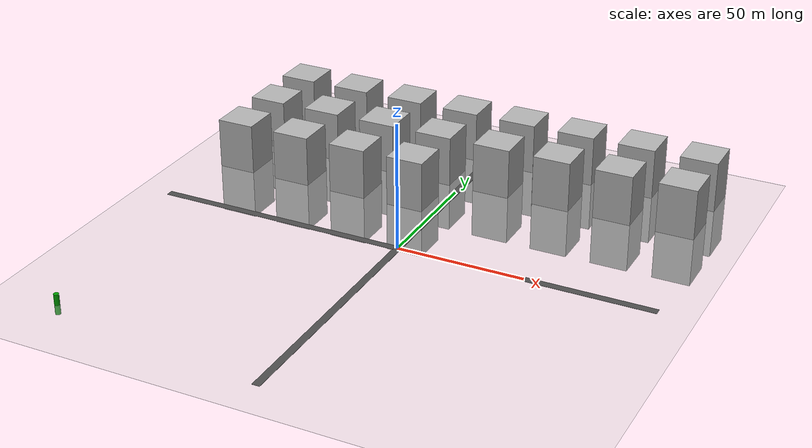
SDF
<?xml version="1.0" ?>
<sdf version="1.6">
  <world name="building_world">
    <!-- Expanded Ground plane -->
    <model name="ground_plane">
      <static>true</static>
      <link name="link">
        <collision name="collision">
          <geometry>
            <plane>
              <normal>0 0 1</normal>
              <size>200 200</size>
            </plane>
          </geometry>
        </collision>
        <visual name="visual">
          <geometry>
            <plane>
              <normal>0 0 1</normal>
              <size>200 200</size>
            </plane>
          </geometry>
          <material>
            <ambient>0.8 0.8 0.8 1</ambient>
          </material>
        </visual>
      </link>
    </model>

    <!-- Sun -->
    <include>
      <uri>model://sun</uri>
    </include>

    <!-- Environmental parameters -->
    <scene>
      <ambient>0.8 0.8 0.8 1</ambient>
      <background>0.7 0.7 0.7 1</background>
      <shadows>true</shadows>
      <wind>
        <direction>1 0 0</direction>
        <speed>2.5</speed>
      </wind>
      <humidity>0.5</humidity>
    </scene>

    <!-- 20 non-overlapping buildings on a grid -->
    <model name="building1">
      <pose>-87.5 87.5 0 0 0 0</pose>
      <static>true</static>
      <link name="link">
        <collision name="collision">
          <geometry>
            <box>
              <size>15 15 40</size>
            </box>
          </geometry>
        </collision>
        <visual name="visual">
          <geometry>
            <box>
              <size>15 15 40</size>
            </box>
          </geometry>
          <material>
            <ambient>0.7 0.7 0.7 1</ambient>
          </material>
        </visual>
      </link>
    </model>

    <model name="building2">
      <pose>-62.5 87.5 0 0 0 0</pose>
      <static>true</static>
      <link name="link">
        <collision name="collision">
          <geometry>
            <box>
              <size>15 15 40</size>
            </box>
          </geometry>
        </collision>
        <visual name="visual">
          <geometry>
            <box>
              <size>15 15 40</size>
            </box>
          </geometry>
          <material>
            <ambient>0.7 0.7 0.7 1</ambient>
          </material>
        </visual>
      </link>
    </model>

    <model name="building3">
      <pose>-37.5, 87.5 0 0 0 0</pose>
      <static>true</static>
      <link name="link">
        <collision name="collision">
          <geometry>
            <box>
              <size>15 15 40</size>
            </box>
          </geometry>
        </collision>
        <visual name="visual">
          <geometry>
            <box>
              <size>15 15 40</size>
            </box>
          </geometry>
          <material>
            <ambient>0.7 0.7 0.7 1</ambient>
          </material>
        </visual>
      </link>
    </model>

    <model name="building4">
      <pose>-12.5, 87.5 0 0 0 0</pose>
      <static>true</static>
      <link name="link">
        <collision name="collision">
          <geometry>
            <box>
              <size>15 15 40</size>
            </box>
          </geometry>
        </collision>
        <visual name="visual">
          <geometry>
            <box>
              <size>15 15 40</size>
            </box>
          </geometry>
          <material>
            <ambient>0.7 0.7 0.7 1</ambient>
          </material>
        </visual>
      </link>
    </model>

    <model name="building5">
      <pose>12.5, 87.5 0 0 0 0</pose>
      <static>true</static>
      <link name="link">
        <collision name="collision">
          <geometry>
            <box>
              <size>15 15 40</size>
            </box>
          </geometry>
        </collision>
        <visual name="visual">
          <geometry>
            <box>
              <size>15 15 40</size>
            </box>
          </geometry>
          <material>
            <ambient>0.7 0.7 0.7 1</ambient>
          </material>
        </visual>
      </link>
    </model>

    <model name="building6">
      <pose>37.5, 87.5 0 0 0 0</pose>
      <static>true</static>
      <link name="link">
        <collision name="collision">
          <geometry>
            <box>
              <size>15 15 40</size>
            </box>
          </geometry>
        </collision>
        <visual name="visual">
          <geometry>
            <box>
              <size>15 15 40</size>
            </box>
          </geometry>
          <material>
            <ambient>0.7 0.7 0.7 1</ambient>
          </material>
        </visual>
      </link>
    </model>

    <model name="building7">
      <pose>62.5, 87.5 0 0 0 0</pose>
      <static>true</static>
      <link name="link">
        <collision name="collision">
          <geometry>
            <box>
              <size>15 15 40</size>
            </box>
          </geometry>
        </collision>
        <visual name="visual">
          <geometry>
            <box>
              <size>15 15 40</size>
            </box>
          </geometry>
          <material>
            <ambient>0.7 0.7 0.7 1</ambient>
          </material>
        </visual>
      </link>
    </model>

    <model name="building8">
      <pose>87.5, 87.5 0 0 0 0</pose>
      <static>true</static>
      <link name="link">
        <collision name="collision">
          <geometry>
            <box>
              <size>15 15 40</size>
            </box>
          </geometry>
        </collision>
        <visual name="visual">
          <geometry>
            <box>
              <size>15 15 40</size>
            </box>
          </geometry>
          <material>
            <ambient>0.7 0.7 0.7 1</ambient>
          </material>
        </visual>
      </link>
    </model>

    <model name="building9">
      <pose>-87.5, 62.5 0 0 0 0</pose>
      <static>true</static>
      <link name="link">
        <collision name="collision">
          <geometry>
            <box>
              <size>15 15 40</size>
            </box>
          </geometry>
        </collision>
        <visual name="visual">
          <geometry>
            <box>
              <size>15 15 40</size>
            </box>
          </geometry>
          <material>
            <ambient>0.7 0.7 0.7 1</ambient>
          </material>
        </visual>
      </link>
    </model>

    <model name="building10">
      <pose>-62.5, 62.5 0 0 0 0</pose>
      <static>true</static>
      <link name="link">
        <collision name="collision">
          <geometry>
            <box>
              <size>15 15 40</size>
            </box>
          </geometry>
        </collision>
        <visual name="visual">
          <geometry>
            <box>
              <size>15 15 40</size>
            </box>
          </geometry>
          <material>
            <ambient>0.7 0.7 0.7 1</ambient>
          </material>
        </visual>
      </link>
    </model>

    <model name="building11">
      <pose>-37.5, 62.5 0 0 0 0</pose>
      <static>true</static>
      <link name="link">
        <collision name="collision">
          <geometry>
            <box>
              <size>15 15 40</size>
            </box>
          </geometry>
        </collision>
        <visual name="visual">
          <geometry>
            <box>
              <size>15 15 40</size>
            </box>
          </geometry>
          <material>
            <ambient>0.7 0.7 0.7 1</ambient>
          </material>
        </visual>
      </link>
    </model>

    <model name="building12">
      <pose>-12.5, 62.5 0 0 0 0</pose>
      <static>true</static>
      <link name="link">
        <collision name="collision">
          <geometry>
            <box>
              <size>15 15 40</size>
            </box>
          </geometry>
        </collision>
        <visual name="visual">
          <geometry>
            <box>
              <size>15 15 40</size>
            </box>
          </geometry>
          <material>
            <ambient>0.7 0.7 0.7 1</ambient>
          </material>
        </visual>
      </link>
    </model>

    <model name="building13">
      <pose>12.5, 62.5 0 0 0 0</pose>
      <static>true</static>
      <link name="link">
        <collision name="collision">
          <geometry>
            <box>
              <size>15 15 40</size>
            </box>
          </geometry>
        </collision>
        <visual name="visual">
          <geometry>
            <box>
              <size>15 15 40</size>
            </box>
          </geometry>
          <material>
            <ambient>0.7 0.7 0.7 1</ambient>
          </material>
        </visual>
      </link>
    </model>

    <model name="building14">
      <pose>37.5, 62.5 0 0 0 0</pose>
      <static>true</static>
      <link name="link">
        <collision name="collision">
          <geometry>
            <box>
              <size>15 15 40</size>
            </box>
          </geometry>
        </collision>
        <visual name="visual">
          <geometry>
            <box>
              <size>15 15 40</size>
            </box>
          </geometry>
          <material>
            <ambient>0.7 0.7 0.7 1</ambient>
          </material>
        </visual>
      </link>
    </model>

    <model name="building15">
      <pose>62.5, 62.5 0 0 0 0</pose>
      <static>true</static>
      <link name="link">
        <collision name="collision">
          <geometry>
            <box>
              <size>15 15 40</size>
            </box>
          </geometry>
        </collision>
        <visual name="visual">
          <geometry>
            <box>
              <size>15 15 40</size>
            </box>
          </geometry>
          <material>
            <ambient>0.7 0.7 0.7 1</ambient>
          </material>
        </visual>
      </link>
    </model>

    <model name="building16">
      <pose>87.5, 62.5 0 0 0 0</pose>
      <static>true</static>
      <link name="link">
        <collision name="collision">
          <geometry>
            <box>
              <size>15 15 40</size>
            </box>
          </geometry>
        </collision>
        <visual name="visual">
          <geometry>
            <box>
              <size>15 15 40</size>
            </box>
          </geometry>
          <material>
            <ambient>0.7 0.7 0.7 1</ambient>
          </material>
        </visual>
      </link>
    </model>

    <model name="building17">
      <pose>-87.5, 37.5 0 0 0 0</pose>
      <static>true</static>
      <link name="link">
        <collision name="collision">
          <geometry>
            <box>
              <size>15 15 40</size>
            </box>
          </geometry>
        </collision>
        <visual name="visual">
          <geometry>
            <box>
              <size>15 15 40</size>
            </box>
          </geometry>
          <material>
            <ambient>0.7 0.7 0.7 1</ambient>
          </material>
        </visual>
      </link>
    </model>

    <model name="building18">
      <pose>-62.5, 37.5 0 0 0 0</pose>
      <static>true</static>
      <link name="link">
        <collision name="collision">
          <geometry>
            <box>
              <size>15 15 40</size>
            </box>
          </geometry>
        </collision>
        <visual name="visual">
          <geometry>
            <box>
              <size>15 15 40</size>
            </box>
          </geometry>
          <material>
            <ambient>0.7 0.7 0.7 1</ambient>
          </material>
        </visual>
      </link>
    </model>

    <model name="building19">
      <pose>-37.5, 37.5 0 0 0 0</pose>
      <static>true</static>
      <link name="link">
        <collision name="collision">
          <geometry>
            <box>
              <size>15 15 40</size>
            </box>
          </geometry>
        </collision>
        <visual name="visual">
          <geometry>
            <box>
              <size>15 15 40</size>
            </box>
          </geometry>
          <material>
            <ambient>0.7 0.7 0.7 1</ambient>
          </material>
        </visual>
      </link>
    </model>

    <model name="building17">
      <pose>-12.5, 37.5 0 0 0 0</pose>
      <static>true</static>
      <link name="link">
        <collision name="collision">
          <geometry>
            <box>
              <size>15 15 40</size>
            </box>
          </geometry>
        </collision>
        <visual name="visual">
          <geometry>
            <box>
              <size>15 15 40</size>
            </box>
          </geometry>
          <material>
            <ambient>0.7 0.7 0.7 1</ambient>
          </material>
        </visual>
      </link>
    </model>

    <!-- Continue building definitions with grid positions:
         (), (), (),
         (), (), (),
         (), (), (),
         (), (), (),
         (), (), (),
         (), (), () -->

    <!-- Expanded Roads -->
    <model name="road_horizontal">
      <pose>0 0 0 0 0 0</pose>
      <static>true</static>
      <link name="link">
        <collision name="collision">
          <geometry>
            <box>
              <size>200 3 0.1</size>
            </box>
          </geometry>
        </collision>
        <visual name="visual">
          <geometry>
            <box>
              <size>200 3 0.1</size>
            </box>
          </geometry>
          <material>
            <ambient>0.3 0.3 0.3 1</ambient>
          </material>
        </visual>
      </link>
    </model>

    <model name="road_vertical">
      <pose>0 0 0 0 0 1.5708</pose>
      <static>true</static>
      <link name="link">
        <collision name="collision">
          <geometry>
            <box>
              <size>200 3 0.1</size>
            </box>
          </geometry>
        </collision>
        <visual name="visual">
          <geometry>
            <box>
              <size>200 3 0.1</size>
            </box>
          </geometry>
          <material>
            <ambient>0.3 0.3 0.3 1</ambient>
          </material>
        </visual>
      </link>
    </model>

    <!-- Non-overlapping trees -->
    <model name="tree1">
      <pose>-87.5 -87.5 0 0 0 0</pose>
      <static>true</static>
      <link name="link">
        <collision name="collision">
          <geometry>
            <cylinder>
              <radius>1</radius>
              <length>8</length>
            </cylinder>
          </geometry>
        </collision>
        <visual name="visual">
           <geometry>
            <cylinder>
              <radius>1</radius>
              <length>8</length>
            </cylinder>
          </geometry>
          <material>
            <ambient>0 0.6 0 1</ambient>
          </material>
        </visual>
      </link>
    </model>

    <!-- Additional trees at:
         (-62.5, -87.5), (-37.5, -87.5), (-12.5, -87.5),
         (12.5, -87.5), (37.5, -87.5), (62.5, -87.5),
         (87.5, -87.5), (-87.5, -62.5), (-62.5, -62.5) -->
  </world>
</sdf>
